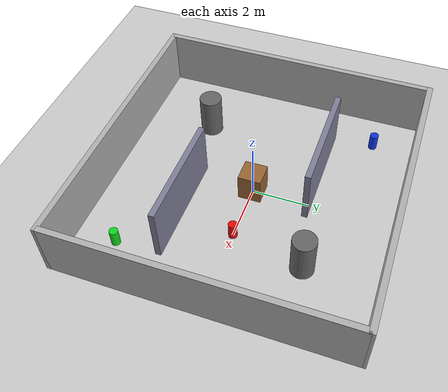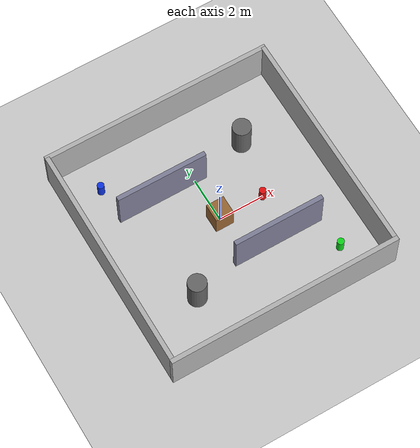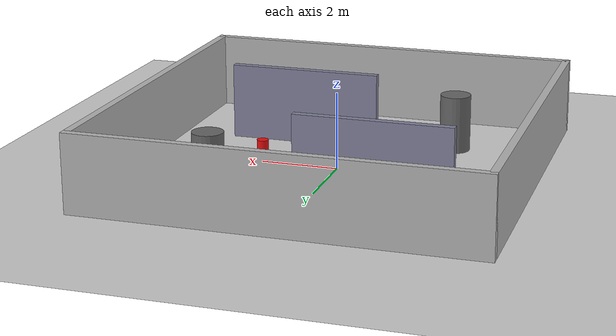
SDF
<?xml version="1.0" ?>
<sdf version="1.6">
  <world name="robot_arena">

    <!-- Physics Configuration -->
    <physics type="ode">
      <max_step_size>0.001</max_step_size>
      <real_time_factor>1.0</real_time_factor>
      <real_time_update_rate>1000.0</real_time_update_rate>
      <ode>
        <solver>
          <type>quick</type>
          <iters>50</iters>
          <sor>1.3</sor>
        </solver>
        <constraints>
          <cfm>0.0</cfm>
          <erp>0.2</erp>
          <contact_max_correcting_vel>100.0</contact_max_correcting_vel>
          <contact_surface_layer>0.001</contact_surface_layer>
        </constraints>
      </ode>
    </physics>

    <!-- Sun Light -->
    <include>
      <uri>model://sun</uri>
    </include>

    <!-- Ground Plane -->
    <include>
      <uri>model://ground_plane</uri>
    </include>

    <!-- Scene parameters -->
    <scene>
      <ambient>0.6 0.6 0.6 1.0</ambient>
      <background>0.8 0.8 0.8 1.0</background>
      <shadows>true</shadows>
    </scene>

    <!-- ARENA BOUNDARY WALLS (10m x 10m) -->
    <!-- North Wall -->
    <model name="wall_north">
      <static>true</static>
      <pose>0 5.0 1.0 0 0 0</pose>
      <link name="link">
        <collision name="collision">
          <geometry><box><size>10.2 0.2 2.0</size></box></geometry>
        </collision>
        <visual name="visual">
          <geometry><box><size>10.2 0.2 2.0</size></box></geometry>
          <material>
            <ambient>0.7 0.7 0.7 1</ambient>
            <diffuse>0.7 0.7 0.7 1</diffuse>
          </material>
        </visual>
      </link>
    </model>

    <!-- South Wall -->
    <model name="wall_south">
      <static>true</static>
      <pose>0 -5.0 1.0 0 0 0</pose>
      <link name="link">
        <collision name="collision">
          <geometry><box><size>10.2 0.2 2.0</size></box></geometry>
        </collision>
        <visual name="visual">
          <geometry><box><size>10.2 0.2 2.0</size></box></geometry>
          <material>
            <ambient>0.7 0.7 0.7 1</ambient>
            <diffuse>0.7 0.7 0.7 1</diffuse>
          </material>
        </visual>
      </link>
    </model>

    <!-- East Wall -->
    <model name="wall_east">
      <static>true</static>
      <pose>5.0 0 1.0 0 0 0</pose>
      <link name="link">
        <collision name="collision">
          <geometry><box><size>0.2 10.0 2.0</size></box></geometry>
        </collision>
        <visual name="visual">
          <geometry><box><size>0.2 10.0 2.0</size></box></geometry>
          <material>
            <ambient>0.7 0.7 0.7 1</ambient>
            <diffuse>0.7 0.7 0.7 1</diffuse>
          </material>
        </visual>
      </link>
    </model>

    <!-- West Wall -->
    <model name="wall_west">
      <static>true</static>
      <pose>-5.0 0 1.0 0 0 0</pose>
      <link name="link">
        <collision name="collision">
          <geometry><box><size>0.2 10.0 2.0</size></box></geometry>
        </collision>
        <visual name="visual">
          <geometry><box><size>0.2 10.0 2.0</size></box></geometry>
          <material>
            <ambient>0.7 0.7 0.7 1</ambient>
            <diffuse>0.7 0.7 0.7 1</diffuse>
          </material>
        </visual>
      </link>
    </model>

    <!-- INTERNAL ROOM PARTITIONS -->
    <!-- Room Divider 1 -->
    <model name="inner_wall_1">
      <static>true</static>
      <pose>-1.5 2.0 1.0 0 0 0</pose>
      <link name="link">
        <collision name="collision">
          <geometry><box><size>4.0 0.2 2.0</size></box></geometry>
        </collision>
        <visual name="visual">
          <geometry><box><size>4.0 0.2 2.0</size></box></geometry>
          <material>
            <ambient>0.5 0.5 0.6 1</ambient>
            <diffuse>0.5 0.5 0.6 1</diffuse>
          </material>
        </visual>
      </link>
    </model>

    <!-- Room Divider 2 -->
    <model name="inner_wall_2">
      <static>true</static>
      <pose>1.5 -2.0 1.0 0 0 0</pose>
      <link name="link">
        <collision name="collision">
          <geometry><box><size>4.0 0.2 2.0</size></box></geometry>
        </collision>
        <visual name="visual">
          <geometry><box><size>4.0 0.2 2.0</size></box></geometry>
          <material>
            <ambient>0.5 0.5 0.6 1</ambient>
            <diffuse>0.5 0.5 0.6 1</diffuse>
          </material>
        </visual>
      </link>
    </model>

    <!-- Column Obstacle 1 -->
    <model name="obstacle_pillar_1">
      <static>true</static>
      <pose>-2.5 -2.5 0.75 0 0 0</pose>
      <link name="link">
        <collision name="collision">
          <geometry><cylinder><radius>0.4</radius><length>1.5</length></cylinder></geometry>
        </collision>
        <visual name="visual">
          <geometry><cylinder><radius>0.4</radius><length>1.5</length></cylinder></geometry>
          <material>
            <ambient>0.3 0.3 0.3 1</ambient>
            <diffuse>0.4 0.4 0.4 1</diffuse>
          </material>
        </visual>
      </link>
    </model>

    <!-- Column Obstacle 2 -->
    <model name="obstacle_pillar_2">
      <static>true</static>
      <pose>2.5 2.5 0.75 0 0 0</pose>
      <link name="link">
        <collision name="collision">
          <geometry><cylinder><radius>0.4</radius><length>1.5</length></cylinder></geometry>
        </collision>
        <visual name="visual">
          <geometry><cylinder><radius>0.4</radius><length>1.5</length></cylinder></geometry>
          <material>
            <ambient>0.3 0.3 0.3 1</ambient>
            <diffuse>0.4 0.4 0.4 1</diffuse>
          </material>
        </visual>
      </link>
    </model>

    <!-- Box Obstacle -->
    <model name="obstacle_box_1">
      <static>true</static>
      <pose>0.0 0.0 0.5 0 0 0</pose>
      <link name="link">
        <collision name="collision">
          <geometry><box><size>0.8 0.8 1.0</size></box></geometry>
        </collision>
        <visual name="visual">
          <geometry><box><size>0.8 0.8 1.0</size></box></geometry>
          <material>
            <ambient>0.6 0.4 0.2 1</ambient>
            <diffuse>0.6 0.4 0.2 1</diffuse>
          </material>
        </visual>
      </link>
    </model>

    <!-- VISUAL TARGET MARKERS FOR OPENCV PERCEPTION   -->

    <!-- PRIMARY RED TARGET BEACON -->
    <model name="red_target_beacon">
      <static>true</static>
      <pose>2.0 0.0 0.3 0 0 0</pose>
      <link name="link">
        <collision name="collision">
          <geometry><cylinder><radius>0.15</radius><length>0.6</length></cylinder></geometry>
        </collision>
        <visual name="visual">
          <geometry><cylinder><radius>0.15</radius><length>0.6</length></cylinder></geometry>
          <material>
            <ambient>0.9 0.05 0.05 1</ambient>
            <diffuse>0.9 0.05 0.05 1</diffuse>
            <specular>0.5 0.5 0.5 1</specular>
            <emissive>0.2 0.0 0.0 1</emissive>
          </material>
        </visual>
      </link>
    </model>

    <!-- SECONDARY BLUE TARGET BEACON -->
    <model name="blue_target_beacon">
      <static>true</static>
      <pose>-3.5 3.5 0.3 0 0 0</pose>
      <link name="link">
        <collision name="collision">
          <geometry><cylinder><radius>0.15</radius><length>0.6</length></cylinder></geometry>
        </collision>
        <visual name="visual">
          <geometry><cylinder><radius>0.15</radius><length>0.6</length></cylinder></geometry>
          <material>
            <ambient>0.05 0.2 0.9 1</ambient>
            <diffuse>0.05 0.2 0.9 1</diffuse>
            <emissive>0.0 0.05 0.3 1</emissive>
          </material>
        </visual>
      </link>
    </model>

    <!-- SECONDARY GREEN TARGET BEACON -->
    <model name="green_target_beacon">
      <static>true</static>
      <pose>3.5 -3.5 0.3 0 0 0</pose>
      <link name="link">
        <collision name="collision">
          <geometry><cylinder><radius>0.15</radius><length>0.6</length></cylinder></geometry>
        </collision>
        <visual name="visual">
          <geometry><cylinder><radius>0.15</radius><length>0.6</length></cylinder></geometry>
          <material>
            <ambient>0.05 0.85 0.1 1</ambient>
            <diffuse>0.05 0.85 0.1 1</diffuse>
            <emissive>0.0 0.2 0.0 1</emissive>
          </material>
        </visual>
      </link>
    </model>

  </world>
</sdf>
